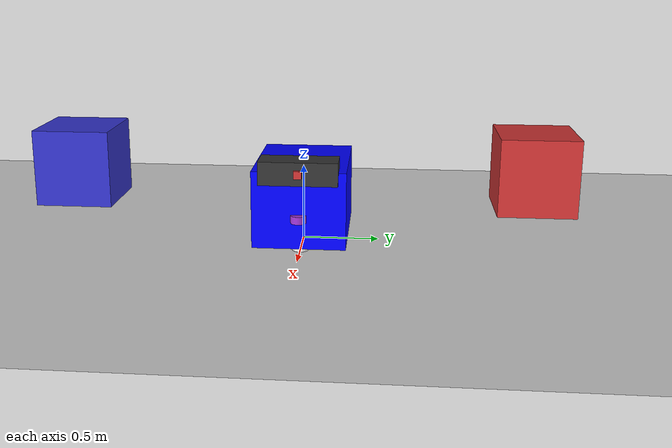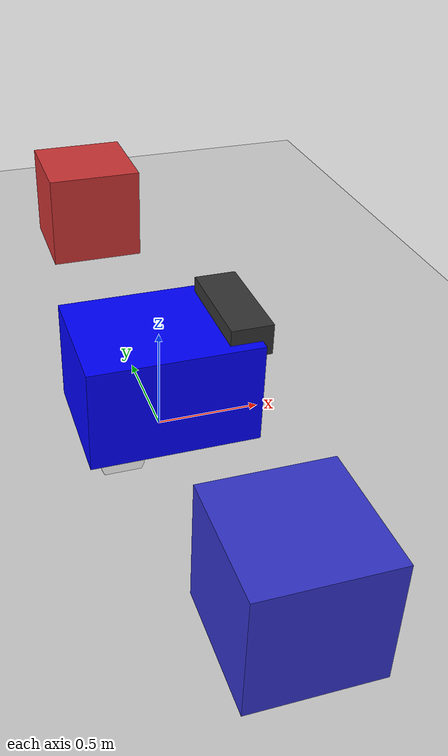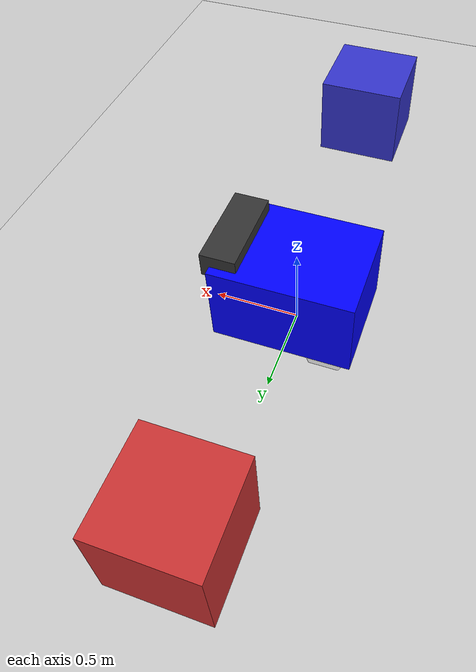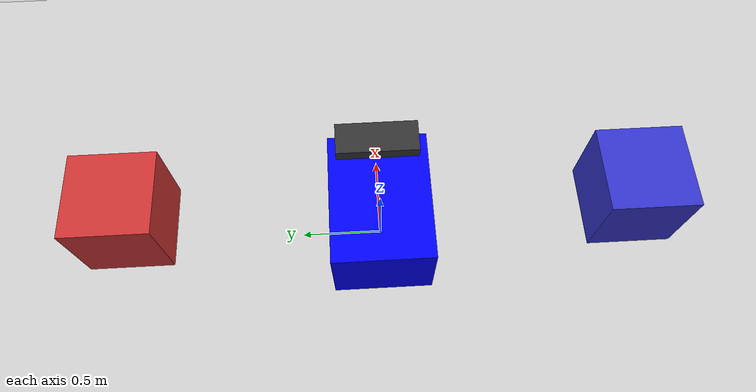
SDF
<sdf version="1.9">
 <world name="car_world">
  <physics name="1ms" type="ignored">
   <max_step_size>0.001</max_step_size>
   <real_time_factor>1.0</real_time_factor>
  </physics>
  <plugin filename="gz-sim-physics-system" name="gz::sim::systems::Physics"/>
  <plugin filename="gz-sim-user-commands-system" name="gz::sim::systems::UserCommands"/>
  <plugin filename="gz-sim-scene-broadcaster-system" name="gz::sim::systems::SceneBroadcaster"/>
  <plugin filename="gz-sim-sensors-system" name="gz::sim::systems::Sensors">
   <render_engine>ogre2</render_engine>
  </plugin>
  <light type="directional" name="sun">
   <pose>0 0 10 0 0 0</pose>
   <diffuse>0.8 0.8 0.8 1</diffuse>
   <specular>0.2 0.2 0.2 1</specular>
   <attenuation>
    <range>1000</range>
    <constant>0.9</constant>
    <linear>0.01</linear>
    <quadratic>0.001</quadratic>
   </attenuation>
   <direction>-0.5 0.1 -0.9</direction>
  </light>
  <model name="ground_plane">
   <static>true</static>
   <link name="link">
    <collision name="collision"><geometry><plane><normal>0 0 1</normal></plane></geometry></collision>
    <visual name="visual">
     <geometry><plane><normal>0 0 1</normal><size>100 100</size></plane></geometry>
     <material>
      <ambient>0.8 0.8 0.8 1</ambient>
      <diffuse>0.8 0.8 0.8 1</diffuse>
      <specular>0.8 0.8 0.8 1</specular>
     </material>
    </visual>
   </link>
  </model>
  <model name="red_cube">
   <pose>0 1.5 0.5 0 0 0</pose>
   <static>true</static>
   <link name="link">
    <collision name="collision"><geometry><box><size>0.5 0.5 0.5</size></box></geometry></collision>
    <visual name="visual">
     <geometry><box><size>0.5 0.5 0.5</size></box></geometry>
     <material>
      <ambient>0.8 0.2 0.2 1</ambient>
      <diffuse>0.8 0.2 0.2 1</diffuse>
      <specular>0.8 0.8 0.8 1</specular>
     </material>
    </visual>
   </link>
  </model>
  <model name="blue_cube">
   <pose>0 -1.5 0.5 0 0 0</pose>
   <static>true</static>
   <link name="link">
    <collision name="collision"><geometry><box><size>0.5 0.5 0.5</size></box></geometry></collision>
    <visual name="visual">
     <geometry><box><size>0.5 0.5 0.5</size></box></geometry>
     <material>
      <ambient>0.2 0.2 0.8 1</ambient>
      <diffuse>0.2 0.2 0.8 1</diffuse>
      <specular>0.8 0.8 0.8 1</specular>
     </material>
    </visual>
   </link>
  </model>
  <include><uri>/home/akshai/ros_ws/src/robot_description/models/robot_model/robot.sdf</uri></include>
 </world>
</sdf>

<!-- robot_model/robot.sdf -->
<sdf version="1.9">

    <!-- simple_bot model -->
    <model name='simple_bot' canonical_link='base_link'>

        <static>false</static>
        <self_collide>false</self_collide>

        <!-- links-->
        <!-- base_footprint -->
        <link name="base_footprint" />

        <!-- base_joint -->
        <joint name="base_joint" type="fixed">
            <pose relative_to='base_link' />
            <parent>base_link</parent>
            <child>base_footprint</child>
        </joint>

        <!-- base_link -->
        <link name="base_link">

            <pose relative_to='__model__'>0 0 0.3 0 0 0</pose>

            <inertial>
                <mass>8.0</mass>
                <inertia>
                    <ixx>0.426667</ixx>
                    <ixy>0</ixy>
                    <ixz>0</ixz>
                    <iyy>0.24</iyy>
                    <iyz>0</iyz>
                    <izz>0.666667</izz>
                </inertia>
            </inertial>

            <visual
                name='visual'>
                <geometry>
                    <box>
                        <size>0.8 0.6 0.5</size>
                    </box>
                </geometry>
                <material> <!-- blue color -->
                    <ambient>0.0 0.0 1.0 1</ambient>
                    <diffuse>0.0 0.0 1.0 1</diffuse>
                    <specular>0.0 0.0 1.0 1</specular>
                </material>
            </visual>

            <collision
                name='collision'>
                <geometry>
                    <box>
                        <size>0.8 0.6 0.5</size>
                    </box>
                </geometry>
            </collision>

        </link>

        <!-- body_link-->
        <link name="body_link">

            <pose relative_to="base_link">0.35 0 0.25 0 0 0</pose>

            <inertial>
                <mass>2.0</mass>
                <inertia>
                    <ixx>0.166667</ixx>
                    <ixy>0</ixy>
                    <ixz>0</ixz>
                    <iyy>0.06</iyy>
                    <iyz>0</iyz>
                    <izz>0.226667</izz>
                </inertia>
            </inertial>

            <visual name='visual'>
                <geometry>
                    <box>
                        <size>0.2 0.5 0.15</size>
                    </box>
                </geometry>
                <material> <!-- Almost Black -->
                    <ambient>0.1 0.1 0.1 1.0</ambient>
                    <diffuse>0.2 0.2 0.2 1.0</diffuse>
                    <specular>0.0 0.0 0.0 1.0</specular>
                </material>
            </visual>

            <collision name='collision'>
                <geometry>
                    <box>
                        <size>0.2 0.5 0.15</size>
                    </box>
                </geometry>
            </collision>

        </link>

        <!-- body_joint -->
        <joint name="body_joint" type="fixed">
            <pose relative_to='body_link' />
            <parent>base_link</parent>
            <child>body_link</child>
        </joint>

        <!-- right_wheel arbitrary frame -->
        <frame name="right_wheel_frame" attached_to='base_link'>
            <pose>-0.25 0.25 -0.25 1.5707 0 0</pose>
        </frame>
        <!-- right_wheel_link-->
        <link name="right_wheel_link">

            <pose relative_to="right_wheel_frame" />

            <inertial>
                <mass>0.4</mass>
                <inertia>
                    <ixx>0.001213</ixx>
                    <ixy>0</ixy>
                    <ixz>0</ixz>
                    <iyy>0.001213</iyy>
                    <iyz>0</iyz>
                    <izz>0.002</izz>
                </inertia>
            </inertial>

            <visual name='visual'>
                <geometry>
                    <cylinder>
                        <radius>0.1</radius>
                        <length>0.08</length>
                    </cylinder>
                </geometry>
                <material> <!-- white color -->
                    <ambient>1.0 1.0 1.0 1.0</ambient>
                    <diffuse>1.0 1.0 1.0 1.0</diffuse>
                    <specular>1.0 1.0 1.0 1.0</specular>
                </material>
            </visual>

            <collision
                name='collision'>
                <geometry>
                    <cylinder>
                        <radius>0.1</radius>
                        <length>0.08</length>
                    </cylinder>
                </geometry>
            </collision>

        </link>

        <!-- right_wheel_joint -->
        <joint name='right_wheel_joint' type='revolute'>
            <pose relative_to='right_wheel_link' />
            <parent>base_link</parent>
            <child>right_wheel_link</child>
            <axis>
                <xyz expressed_in='__model__'>0 1 0</xyz>
                <limit>
                    <lower>-1.79769e+308</lower>    <!--negative
                    infinity-->
                    <upper>1.79769e+308</upper>     <!--positive
                    infinity-->
                </limit>
            </axis>
        </joint>

        <!-- left_wheel arbitrary frame -->
        <frame name="left_wheel_frame" attached_to='base_link'>
            <pose>-0.25 -0.25 -0.25 1.5707 0 0</pose>
        </frame>
        <!-- left_wheel_link-->
        <link name="left_wheel_link">

            <pose relative_to="left_wheel_frame" />

            <inertial>
                <mass>0.4</mass>
                <inertia>
                    <ixx>0.001213</ixx>
                    <ixy>0</ixy>
                    <ixz>0</ixz>
                    <iyy>0.001213</iyy>
                    <iyz>0</iyz>
                    <izz>0.002</izz>
                </inertia>
            </inertial>

            <visual name='visual'>
                <geometry>
                    <cylinder>
                        <radius>0.1</radius>
                        <length>0.08</length>
                    </cylinder>
                </geometry>
                <material> <!-- white color -->
                    <ambient>1.0 1.0 1.0 1.0</ambient>
                    <diffuse>1.0 1.0 1.0 1.0</diffuse>
                    <specular>1.0 1.0 1.0 1.0</specular>
                </material>
            </visual>

            <collision name='collision'>
                <geometry>
                    <cylinder>
                        <radius>0.1</radius>
                        <length>0.08</length>
                    </cylinder>
                </geometry>
            </collision>

        </link>

        <!-- left_wheel_joint -->
        <joint name='left_wheel_joint' type='revolute'>
            <pose relative_to='left_wheel_link' />
            <parent>base_link</parent>
            <child>left_wheel_link</child>
            <axis>
                <xyz expressed_in='__model__'>0 1 0</xyz>
                <limit>
                    <lower>-1.79769e+308</lower>    <!--negative
                    infinity-->
                    <upper>1.79769e+308</upper>     <!--positive
                    infinity-->
                </limit>
            </axis>
        </joint>

        <!-- caster arbitrary frame -->
        <frame name="caster_frame" attached_to='base_link'>
            <pose>0.25 0 -0.28 0 0 0</pose>
        </frame>
        <!-- caster_link-->
        <link name="caster_link">

            <pose relative_to="caster_frame" />

            <inertial>
                <mass>0.3</mass>
                <inertia>
                    <ixx>0.0012</ixx>
                    <ixy>0</ixy>
                    <ixz>0</ixz>
                    <iyy>0.0012</iyy>
                    <iyz>0</iyz>
                    <izz>0.0012</izz>
                </inertia>
            </inertial>

            <visual name='visual'>
                <geometry>
                    <sphere>
                        <radius>0.06</radius>
                    </sphere>
                </geometry>
                <material> <!-- white color -->
                    <ambient>1.0 1.0 1.0 1.0</ambient>
                    <diffuse>1.0 1.0 1.0 1.0</diffuse>
                    <specular>1.0 1.0 1.0 1.0</specular>
                </material>
            </visual>

            <collision name='collision'>
                <geometry>
                    <sphere>
                        <radius>0.06</radius>
                    </sphere>
                </geometry>
            </collision>

        </link>

        <!-- caster_joint -->
        <joint name="caster_joint" type='ball'>
            <pose relative_to="caster_link" />
            <parent>base_link</parent>
            <child>caster_link</child>
        </joint>

        <!-- camera_link-->
        <link name="camera_link">

            <pose relative_to="body_link">0.1 0 0 0 0 0</pose>

            <visual name='visual'>
                <geometry>
                    <box>
                        <size>0.05 0.05 0.05</size>
                    </box>
                </geometry>
                <material> <!-- Rusty Red -->
                    <ambient>0.7 0.1 0.1 1.0</ambient>
                    <diffuse>0.8 0.2 0.2 1.0</diffuse>
                    <specular>0.3 0.3 0.3 1.0</specular>
                </material>
            </visual>

            <collision name='collision'>
                <geometry>
                    <box>
                        <size>0.05 0.05 0.05</size>
                    </box>
                </geometry>
            </collision>

            <sensor name="camera" type="camera">
                <pose relative_to='camera_link'>0 0 0 0 0 0</pose>
                <topic>camera</topic>
                <camera>
                    <horizontal_fov>1.047</horizontal_fov>
                    <image>
                        <width>1280</width>
                        <height>720</height>
                    </image>
                    <clip>
                        <near>0.1</near>
                        <far>100</far>
                    </clip>
                </camera>
                <always_on>1</always_on>
                <update_rate>10</update_rate>
                <visualize>true</visualize>
            </sensor>

        </link>

        <!-- camera_joint -->
        <joint name="camera_joint" type="fixed">
            <pose relative_to='camera_link' />
            <parent>base_link</parent>
            <child>camera_link</child>
        </joint>

        <!-- lidar_link-->
        <link name="lidar_link">

            <pose relative_to="base_link">0.4 0 -0.05 0 0 0</pose>

            <visual name='visual'>
                <geometry>
                    <cylinder>
                        <radius>0.05</radius>
                        <length>0.05</length>
                    </cylinder>
                </geometry>
                <material> <!-- Violet -->
                    <ambient>0.5 0.1 0.7 1.0</ambient>
                    <diffuse>0.6 0.2 0.8 1.0</diffuse>
                    <specular>0.7 0.3 0.9 1.0</specular>
                </material>
            </visual>

            <collision name='collision'>
                <geometry>
                    <cylinder>
                        <radius>0.05</radius>
                        <length>0.05</length>
                    </cylinder>
                </geometry>
            </collision>

            <sensor name='gpu_lidar' type='gpu_lidar'>
                <pose relative_to='lidar_link'>0 0 0 0 0 0</pose>
                <topic>lidar</topic>
                <update_rate>10</update_rate>
                <ray>
                    <scan>
                        <horizontal>
                            <samples>400</samples>
                            <resolution>1</resolution>
                            <min_angle>-1.5707</min_angle>
                            <max_angle>1.5707</max_angle>
                        </horizontal>
                        <vertical>
                            <samples>1</samples>
                            <resolution>0.01</resolution>
                            <min_angle>0</min_angle>
                            <max_angle>0</max_angle>
                        </vertical>
                    </scan>
                    <range>
                        <min>0.15</min>
                        <max>25.0</max>
                        <resolution>0.01</resolution>
                    </range>
                </ray>
                <gz_frame_id>lidar_link</gz_frame_id>
                <always_on>1</always_on>
                <visualize>true</visualize>
            </sensor>

        </link>

        <!-- lidar_joint -->
        <joint name="lidar_joint" type="fixed">
            <pose relative_to='lidar_link' />
            <parent>base_link</parent>
            <child>lidar_link</child>
        </joint>

        <!-- plugins -->
        <!-- diff_drive_plugin -->
        <plugin
            filename="gz-sim-diff-drive-system"
            name="gz::sim::systems::DiffDrive">
            <left_joint>left_wheel_joint</left_joint>
            <right_joint>right_wheel_joint</right_joint>
            <wheel_separation>0.5</wheel_separation>
            <wheel_radius>0.1</wheel_radius>
            <topic>cmd_vel</topic>
            <odom_topic>/odom</odom_topic>
            <frame_id>odom</frame_id>
            <child_frame_id>base_link</child_frame_id>
        </plugin>

        <!-- joint state publisher plugin -->
        <plugin
            filename="gz-sim-joint-state-publisher-system"
            name="gz::sim::systems::JointStatePublisher">
            <joint_name>base_joint</joint_name>
            <joint_name>body_joint</joint_name>
            <joint_name>right_wheel_joint</joint_name>
            <joint_name>left_wheel_joint</joint_name>
            <joint_name>caster_joint</joint_name>
            <joint_name>camera_joint</joint_name>
            <joint_name>lidar_joint</joint_name>
        </plugin>

        <plugin
            filename="gz-sim-odometry-publisher-system"
            name="gz::sim::systems::OdometryPublisher">
            <odom_frame>odom</odom_frame>
            <odom_covariance_topic>odometry_with_covariance</odom_covariance_topic>
            <tf_topic>tf</tf_topic>
            <robot_base_frame>base_footprint</robot_base_frame>
            <odom_topic>odom</odom_topic>
        </plugin>

    </model>

</sdf>
